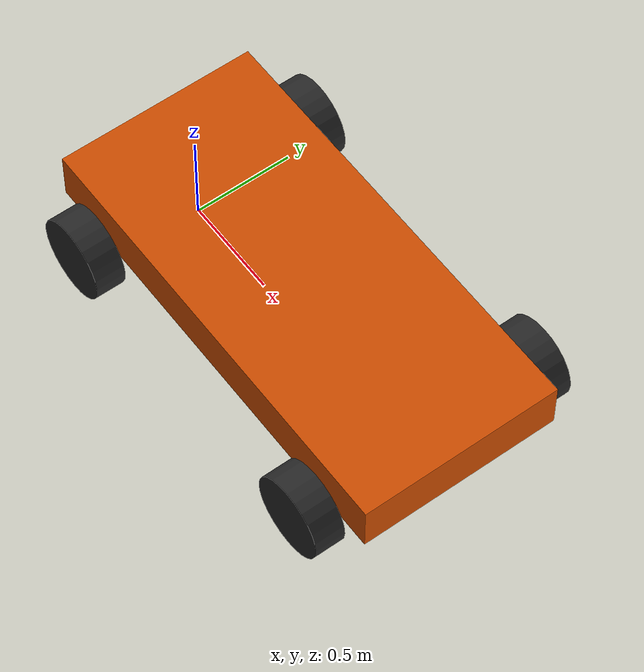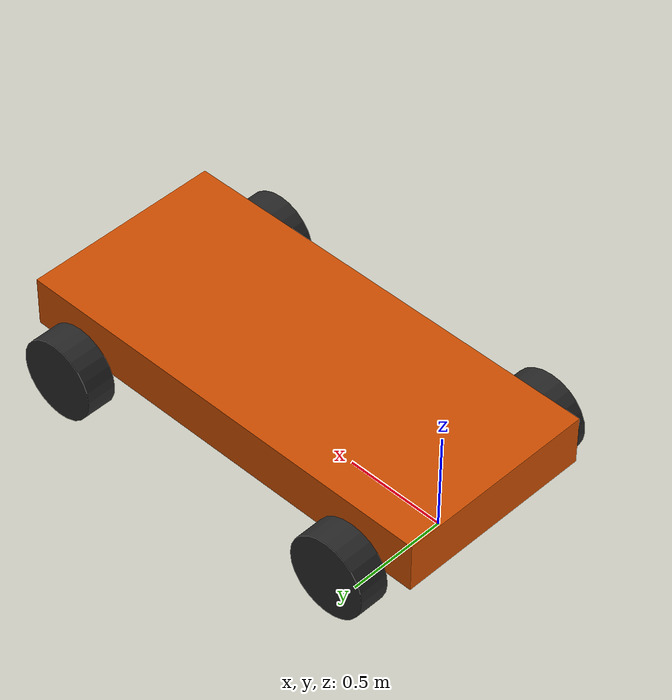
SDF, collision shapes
<?xml version="1.0" ?>
<sdf version="1.9">
  <model name="fsae_vehicle">

    <!-- ===== CHASSIS ===== -->
    <link name="chassis">
      <pose>0.8 0 0.35 0 0 0</pose>
      <inertial>
        <mass>200.0</mass>
        <inertia>
          <ixx>20.0</ixx>
          <iyy>80.0</iyy>
          <izz>80.0</izz>
          <ixy>0</ixy><ixz>0</ixz><iyz>0</iyz>
        </inertia>
      </inertial>
      <visual name="body_visual">
        <pose>-0.07 -0.02 0.0 0 0 0</pose>
        <geometry>
          <mesh>
            <uri>model://fsae_vehicle/meshes/carBody.stl</uri>
            <scale>1.7 1.7 1.7</scale>
          </mesh>
        </geometry>
        <material>
          <ambient>0.8 0.3 0.0 1</ambient>
          <diffuse>0.8 0.3 0.0 1</diffuse>
        </material>
      </visual>
      <collision name="body_collision">
        <geometry>
          <box><size>2.2 1.0 0.25</size></box>
        </geometry>
      </collision>

      <!-- IMU sensor -->
      <sensor name="imu_sensor" type="imu">
        <always_on>true</always_on>
        <update_rate>100</update_rate>
        <visualize>false</visualize>
        <topic>/imu/data</topic>
      </sensor>

      <sensor name="lidar" type="gpu_lidar">
        <pose>1.0 0 0.2 0 0 0</pose>
        <always_on>true</always_on>
        <update_rate>10</update_rate>
        <visualize>true</visualize>
        <topic>/lidar/points</topic>
        <lidar>
          <scan>
            <horizontal>
              <samples>1800</samples>
              <resolution>1</resolution>
              <min_angle>-3.14159</min_angle>
              <max_angle>3.14159</max_angle>
            </horizontal>
            <vertical>
              <samples>16</samples>
              <resolution>1</resolution>
              <min_angle>-0.261799</min_angle>
              <max_angle>0.261799</max_angle>
            </vertical>
          </scan>
          <range>
            <min>0.9</min>
            <max>100.0</max>
            <resolution>0.003</resolution>
          </range>
        </lidar>
      </sensor>
    </link>

    <!-- ===== FRONT LEFT STEERING KNUCKLE ===== -->
    <link name="front_left_steering">
      <pose>1.6 0.6 0.2 0 0 0</pose>
      <inertial>
        <mass>0.1</mass>
        <inertia>
          <ixx>0.0001</ixx><iyy>0.0001</iyy><izz>0.0001</izz>
          <ixy>0</ixy><ixz>0</ixz><iyz>0</iyz>
        </inertia>
      </inertial>
    </link>

    <joint name="front_left_steering_joint" type="revolute">
      <parent>chassis</parent>
      <child>front_left_steering</child>
      <axis>
        <xyz>0 0 1</xyz>
        <limit>
          <lower>-0.7</lower>
          <upper>0.7</upper>
          <effort>1e6</effort>
          <velocity>10.0</velocity>
        </limit>
      </axis>
    </joint>

    <!-- FRONT LEFT WHEEL -->
    <link name="front_left_wheel">
      <pose>1.6 0.6 0.2 -1.5708 0 0</pose>
      <inertial>
        <mass>8.0</mass>
        <inertia>
          <ixx>0.08</ixx><iyy>0.16</iyy><izz>0.08</izz>
          <ixy>0</ixy><ixz>0</ixz><iyz>0</iyz>
        </inertia>
      </inertial>
      <visual name="visual">
        <pose>-0.59 -0.20 -0.61 1.5708 0 0</pose>
        <geometry>
          <mesh>
            <uri>model://fsae_vehicle/meshes/carTire.stl</uri>
            <scale>2.17 2.17 2.17</scale>
          </mesh>
        </geometry>
        <material>
          <ambient>0.15 0.15 0.15 1</ambient>
          <diffuse>0.15 0.15 0.15 1</diffuse>
        </material>
      </visual>
      <collision name="collision">
        <geometry>
          <cylinder><radius>0.2</radius><length>0.15</length></cylinder>
        </geometry>
        <surface>
          <friction>
            <ode><mu>1.0</mu><mu2>0.8</mu2></ode>
          </friction>
        </surface>
      </collision>
    </link>

    <joint name="front_left_wheel_joint" type="revolute">
      <parent>front_left_steering</parent>
      <child>front_left_wheel</child>
      <axis>
        <xyz>0 0 1</xyz>
        <limit><lower>-1e16</lower><upper>1e16</upper><effort>1e6</effort></limit>
      </axis>
    </joint>

    <!-- ===== FRONT RIGHT STEERING KNUCKLE ===== -->
    <link name="front_right_steering">
      <pose>1.6 -0.6 0.2 0 0 0</pose>
      <inertial>
        <mass>0.1</mass>
        <inertia>
          <ixx>0.0001</ixx><iyy>0.0001</iyy><izz>0.0001</izz>
          <ixy>0</ixy><ixz>0</ixz><iyz>0</iyz>
        </inertia>
      </inertial>
    </link>

    <joint name="front_right_steering_joint" type="revolute">
      <parent>chassis</parent>
      <child>front_right_steering</child>
      <axis>
        <xyz>0 0 1</xyz>
        <limit>
          <lower>-0.7</lower>
          <upper>0.7</upper>
          <effort>1e6</effort>
          <velocity>10.0</velocity>
        </limit>
      </axis>
    </joint>

    <!-- FRONT RIGHT WHEEL -->
    <link name="front_right_wheel">
      <pose>1.6 -0.6 0.2 -1.5708 0 0</pose>
      <inertial>
        <mass>8.0</mass>
        <inertia>
          <ixx>0.08</ixx><iyy>0.16</iyy><izz>0.08</izz>
          <ixy>0</ixy><ixz>0</ixz><iyz>0</iyz>
        </inertia>
      </inertial>
      <visual name="visual">
        <pose>-0.59 -0.20 -0.61 1.5708 0 0</pose>
        <geometry>
          <mesh>
            <uri>model://fsae_vehicle/meshes/carTire.stl</uri>
            <scale>2.17 2.17 2.17</scale>
          </mesh>
        </geometry>
        <material>
          <ambient>0.15 0.15 0.15 1</ambient>
          <diffuse>0.15 0.15 0.15 1</diffuse>
        </material>
      </visual>
      <collision name="collision">
        <geometry>
          <cylinder><radius>0.2</radius><length>0.15</length></cylinder>
        </geometry>
        <surface>
          <friction>
            <ode><mu>1.0</mu><mu2>0.8</mu2></ode>
          </friction>
        </surface>
      </collision>
    </link>

    <joint name="front_right_wheel_joint" type="revolute">
      <parent>front_right_steering</parent>
      <child>front_right_wheel</child>
      <axis>
        <xyz>0 0 1</xyz>
        <limit><lower>-1e16</lower><upper>1e16</upper><effort>1e6</effort></limit>
      </axis>
    </joint>

    <!-- ===== REAR LEFT WHEEL (no steering knuckle) ===== -->
    <link name="rear_left_wheel">
      <pose>0 0.6 0.2 -1.5708 0 0</pose>
      <inertial>
        <mass>8.0</mass>
        <inertia>
          <ixx>0.08</ixx><iyy>0.16</iyy><izz>0.08</izz>
          <ixy>0</ixy><ixz>0</ixz><iyz>0</iyz>
        </inertia>
      </inertial>
      <visual name="visual">
        <pose>-0.59 -0.20 -0.61 1.5708 0 0</pose>
        <geometry>
          <mesh>
            <uri>model://fsae_vehicle/meshes/carTire.stl</uri>
            <scale>2.17 2.17 2.17</scale>
          </mesh>
        </geometry>
        <material>
          <ambient>0.15 0.15 0.15 1</ambient>
          <diffuse>0.15 0.15 0.15 1</diffuse>
        </material>
      </visual>
      <collision name="collision">
        <geometry>
          <cylinder><radius>0.2</radius><length>0.15</length></cylinder>
        </geometry>
        <surface>
          <friction>
            <ode><mu>1.0</mu><mu2>0.8</mu2></ode>
          </friction>
        </surface>
      </collision>
    </link>

    <joint name="rear_left_wheel_joint" type="revolute">
      <parent>chassis</parent>
      <child>rear_left_wheel</child>
      <axis>
        <xyz>0 0 1</xyz>
        <limit><lower>-1e16</lower><upper>1e16</upper><effort>1e6</effort></limit>
      </axis>
    </joint>

    <!-- ===== REAR RIGHT WHEEL (no steering knuckle) ===== -->
    <link name="rear_right_wheel">
      <pose>0 -0.6 0.2 -1.5708 0 0</pose>
      <inertial>
        <mass>8.0</mass>
        <inertia>
          <ixx>0.08</ixx><iyy>0.16</iyy><izz>0.08</izz>
          <ixy>0</ixy><ixz>0</ixz><iyz>0</iyz>
        </inertia>
      </inertial>
      <visual name="visual">
        <pose>-0.59 -0.20 -0.61 1.5708 0 0</pose>
        <geometry>
          <mesh>
            <uri>model://fsae_vehicle/meshes/carTire.stl</uri>
            <scale>2.17 2.17 2.17</scale>
          </mesh>
        </geometry>
        <material>
          <ambient>0.15 0.15 0.15 1</ambient>
          <diffuse>0.15 0.15 0.15 1</diffuse>
        </material>
      </visual>
      <collision name="collision">
        <geometry>
          <cylinder><radius>0.2</radius><length>0.15</length></cylinder>
        </geometry>
        <surface>
          <friction>
            <ode><mu>1.0</mu><mu2>0.8</mu2></ode>
          </friction>
        </surface>
      </collision>
    </link>

    <joint name="rear_right_wheel_joint" type="revolute">
      <parent>chassis</parent>
      <child>rear_right_wheel</child>
      <axis>
        <xyz>0 0 1</xyz>
        <limit><lower>-1e16</lower><upper>1e16</upper><effort>1e6</effort></limit>
      </axis>
    </joint>

    <!-- ===== STEERING: direct position control (bypasses physics solver) ===== -->
    <plugin
      filename="gz-sim-joint-position-controller-system"
      name="gz::sim::systems::JointPositionController">
      <joint_name>front_left_steering_joint</joint_name>
      <topic>/model/fsae_vehicle/joint/front_left_steering_joint/cmd_pos</topic>
      <use_velocity_commands>true</use_velocity_commands>
      <cmd_max>10.0</cmd_max>
      <cmd_min>-10.0</cmd_min>
    </plugin>

    <plugin
      filename="gz-sim-joint-position-controller-system"
      name="gz::sim::systems::JointPositionController">
      <joint_name>front_right_steering_joint</joint_name>
      <topic>/model/fsae_vehicle/joint/front_right_steering_joint/cmd_pos</topic>
      <use_velocity_commands>true</use_velocity_commands>
      <cmd_max>10.0</cmd_max>
      <cmd_min>-10.0</cmd_min>
    </plugin>

    <!-- ===== DRIVE: direct velocity control ===== -->
    <plugin
      filename="gz-sim-joint-controller-system"
      name="gz::sim::systems::JointController">
      <joint_name>front_left_wheel_joint</joint_name>
      <topic>/model/fsae_vehicle/joint/front_left_wheel_joint/cmd_vel</topic>
    </plugin>

    <plugin
      filename="gz-sim-joint-controller-system"
      name="gz::sim::systems::JointController">
      <joint_name>front_right_wheel_joint</joint_name>
      <topic>/model/fsae_vehicle/joint/front_right_wheel_joint/cmd_vel</topic>
    </plugin>

    <plugin
      filename="gz-sim-joint-controller-system"
      name="gz::sim::systems::JointController">
      <joint_name>rear_left_wheel_joint</joint_name>
      <topic>/model/fsae_vehicle/joint/rear_left_wheel_joint/cmd_vel</topic>
    </plugin>

    <plugin
      filename="gz-sim-joint-controller-system"
      name="gz::sim::systems::JointController">
      <joint_name>rear_right_wheel_joint</joint_name>
      <topic>/model/fsae_vehicle/joint/rear_right_wheel_joint/cmd_vel</topic>
    </plugin>

    <!-- ===== GROUND-TRUTH ODOMETRY (world-frame pose, not wheel encoders) ===== -->
    <plugin
      filename="gz-sim-odometry-publisher-system"
      name="gz::sim::systems::OdometryPublisher">
      <odom_topic>/model/fsae_vehicle/odometry</odom_topic>
      <odom_frame>map</odom_frame>
      <robot_base_frame>base_link</robot_base_frame>
      <odom_publish_frequency>50</odom_publish_frequency>
    </plugin>

  </model>
</sdf>
